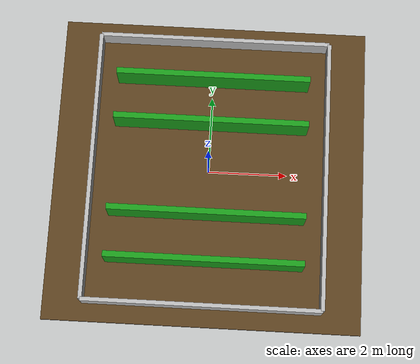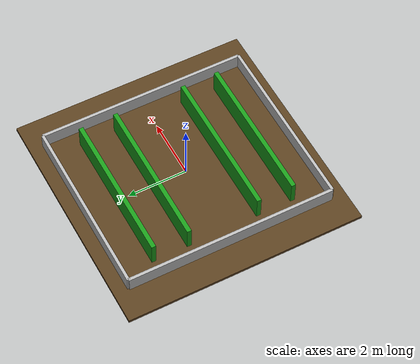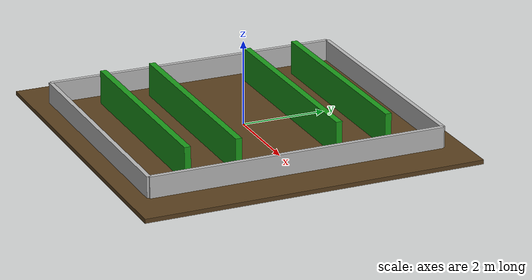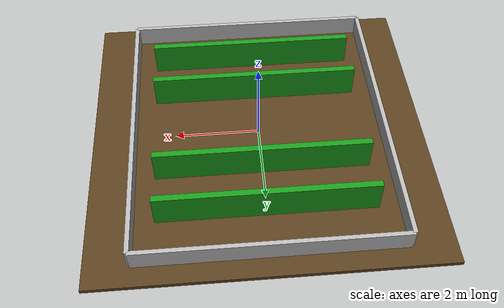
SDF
<?xml version="1.0" ?>

<sdf version="1.9">
  <world name="agri_field">

    <!--       WORLD SYSTEMS       -->

    <!-- Physics -->
    <plugin
      filename="gz-sim-physics-system"
      name="gz::sim::systems::Physics">
    </plugin>

    <!-- User commands -->
    <plugin
      filename="gz-sim-user-commands-system"
      name="gz::sim::systems::UserCommands">
    </plugin>

    <!-- Scene broadcaster -->
    <plugin
      filename="gz-sim-scene-broadcaster-system"
      name="gz::sim::systems::SceneBroadcaster">
    </plugin>

    <!-- Sensors - required for GPU LiDAR -->
    <plugin
      filename="gz-sim-sensors-system"
      name="gz::sim::systems::Sensors">
      <render_engine>ogre2</render_engine>
    </plugin>

    <!--           LIGHT            -->

    <light name="sun" type="directional">
      <cast_shadows>true</cast_shadows>
      <pose>0 0 8 0 0 0</pose>
      <diffuse>0.8 0.8 0.8 1</diffuse>
      <specular>0.2 0.2 0.2 1</specular>
      <direction>-0.5 0.3 -1</direction>
    </light>

    <!--          GROUND            -->

    <model name="ground">
      <static>true</static>
      <pose>0 0 -0.05 0 0 0</pose>

      <link name="ground_link">

        <collision name="ground_collision">
          <geometry>
            <box>
              <size>8.0 8.0 0.1</size>
            </box>
          </geometry>
        </collision>

        <visual name="ground_visual">
          <geometry>
            <box>
              <size>8.0 8.0 0.1</size>
            </box>
          </geometry>

          <material>
            <ambient>0.35 0.25 0.12 1</ambient>
            <diffuse>0.35 0.25 0.12 1</diffuse>
          </material>
        </visual>

      </link>
    </model>

    <!--         CROP ROW 1        -->

    <model name="crop_row_1">
      <static>true</static>
      <pose>0 -2.4 0.4 0 0 0</pose>

      <link name="crop_link">

        <collision name="crop_collision">
          <geometry>
            <box>
              <size>5.0 0.15 0.8</size>
            </box>
          </geometry>
        </collision>

        <visual name="crop_visual">
          <geometry>
            <box>
              <size>5.0 0.15 0.8</size>
            </box>
          </geometry>

          <material>
            <ambient>0.1 0.6 0.1 1</ambient>
            <diffuse>0.1 0.6 0.1 1</diffuse>
          </material>
        </visual>

      </link>
    </model>

    <!--         CROP ROW 2        -->

    <model name="crop_row_2">
      <static>true</static>
      <pose>0 -1.2 0.4 0 0 0</pose>

      <link name="crop_link">

        <collision name="crop_collision">
          <geometry>
            <box>
              <size>5.0 0.15 0.8</size>
            </box>
          </geometry>
        </collision>

        <visual name="crop_visual">
          <geometry>
            <box>
              <size>5.0 0.15 0.8</size>
            </box>
          </geometry>

          <material>
            <ambient>0.1 0.6 0.1 1</ambient>
            <diffuse>0.1 0.6 0.1 1</diffuse>
          </material>
        </visual>

      </link>
    </model>

    <!--         CROP ROW 3        -->

    <model name="crop_row_3">
      <static>true</static>
      <pose>0 1.2 0.4 0 0 0</pose>

      <link name="crop_link">

        <collision name="crop_collision">
          <geometry>
            <box>
              <size>5.0 0.15 0.8</size>
            </box>
          </geometry>
        </collision>

        <visual name="crop_visual">
          <geometry>
            <box>
              <size>5.0 0.15 0.8</size>
            </box>
          </geometry>

          <material>
            <ambient>0.1 0.6 0.1 1</ambient>
            <diffuse>0.1 0.6 0.1 1</diffuse>
          </material>
        </visual>

      </link>
    </model>

    <!--         CROP ROW 4        -->

    <model name="crop_row_4">
      <static>true</static>
      <pose>0 2.4 0.4 0 0 0</pose>

      <link name="crop_link">

        <collision name="crop_collision">
          <geometry>
            <box>
              <size>5.0 0.15 0.8</size>
            </box>
          </geometry>
        </collision>

        <visual name="crop_visual">
          <geometry>
            <box>
              <size>5.0 0.15 0.8</size>
            </box>
          </geometry>

          <material>
            <ambient>0.1 0.6 0.1 1</ambient>
            <diffuse>0.1 0.6 0.1 1</diffuse>
          </material>
        </visual>

      </link>
    </model>

    <!--       FIELD BOUNDARY      -->

    <!-- Left boundary -->
    <model name="boundary_left">
      <static>true</static>
      <pose>-3.0 0 0.25 0 0 0</pose>

      <link name="wall">

        <collision name="collision">
          <geometry>
            <box>
              <size>0.1 7.0 0.5</size>
            </box>
          </geometry>
        </collision>

        <visual name="visual">
          <geometry>
            <box>
              <size>0.1 7.0 0.5</size>
            </box>
          </geometry>
        </visual>

      </link>
    </model>

    <!-- Right boundary -->
    <model name="boundary_right">
      <static>true</static>
      <pose>3.0 0 0.25 0 0 0</pose>

      <link name="wall">

        <collision name="collision">
          <geometry>
            <box>
              <size>0.1 7.0 0.5</size>
            </box>
          </geometry>
        </collision>

        <visual name="visual">
          <geometry>
            <box>
              <size>0.1 7.0 0.5</size>
            </box>
          </geometry>
        </visual>

      </link>
    </model>

    <!-- Front boundary -->
    <model name="boundary_front">
      <static>true</static>
      <pose>0 -3.5 0.25 0 0 0</pose>

      <link name="wall">

        <collision name="collision">
          <geometry>
            <box>
              <size>6.0 0.1 0.5</size>
            </box>
          </geometry>
        </collision>

        <visual name="visual">
          <geometry>
            <box>
              <size>6.0 0.1 0.5</size>
            </box>
          </geometry>
        </visual>

      </link>
    </model>

    <!-- Back boundary -->
    <model name="boundary_back">
      <static>true</static>
      <pose>0 3.5 0.25 0 0 0</pose>

      <link name="wall">

        <collision name="collision">
          <geometry>
            <box>
              <size>6.0 0.1 0.5</size>
            </box>
          </geometry>
        </collision>

        <visual name="visual">
          <geometry>
            <box>
              <size>6.0 0.1 0.5</size>
            </box>
          </geometry>
        </visual>

      </link>
    </model>

  </world>
</sdf>
